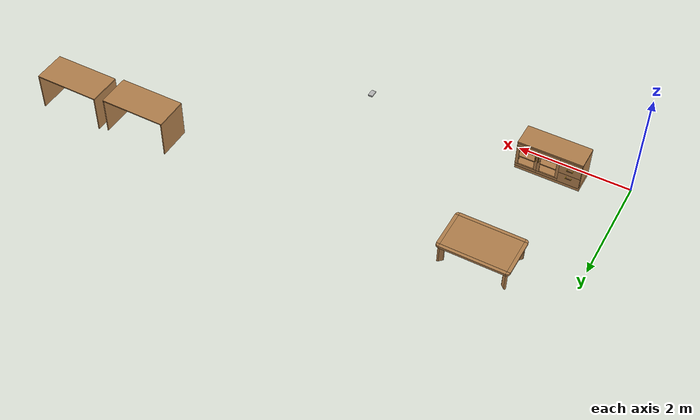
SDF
<sdf version="1.6">
 <world name="default">
  <model name="nasal_cupsul">
   <link name="link">
    <inertial>
     <mass>0.1</mass>
     <inertia><ixx>0.0001</ixx><ixy>0</ixy><ixz>0</ixz><iyy>0.0001</iyy><iyz>0</iyz><izz>0.0001</izz></inertia>
    </inertial>
    <visual name="capsul">
     <geometry><box><size>0.083 0.135 0.026</size></box></geometry>
     <material>
      <script>
       <uri>model://nasal_inflammation_capsul/scripts</uri>
       <uri>model://nasal_inflammation_capsul/textures</uri>
       <name>oral_medicine/nasal_inflammation_capsule</name>
      </script>
     </material>
    </visual>
    <collision name="collision_capsul">
     <geometry><box><size>0.083 0.135 0.026</size></box></geometry>
     <surface>
      <bounce><restitution_coefficient>0.2</restitution_coefficient><threshold>0</threshold></bounce>
      <contact><ode><max_vel>10</max_vel></ode></contact>
     </surface>
    </collision>
    <velocity_decay><linear>0</linear><angular>0</angular></velocity_decay>
   </link>
   <static>0</static>
   <pose>4.51059 0.687683 0.683 0 0 -0.00012</pose>
  </model>
  <model name="kitchen_lowtable">
   <link name="link">
    <inertial>
     <mass>10</mass>
     <inertia><ixx>1</ixx><ixy>0</ixy><ixz>0</ixz><iyy>1</iyy><iyz>0</iyz><izz>1</izz></inertia>
    </inertial>
    <visual name="center_board">
     <pose>0 0 0.38 0 -0 0</pose>
     <geometry><box><size>0.68 1.13 0.04</size></box></geometry>
     <material>
      <script><uri>model://base_materials/wood/scripts/wood.material</uri><name>base_materials/wood</name></script>
     </material>
    </visual>
    <collision name="collision_center_board">
     <pose>0 0 0.38 0 -0 0</pose>
     <geometry><box><size>0.68 1.13 0.04</size></box></geometry>
    </collision>
    <visual name="front_board">
     <pose>0.37 0 0.38 0 -0 0</pose>
     <geometry><box><size>0.06 1.13 0.04</size></box></geometry>
     <material>
      <script><uri>model://base_materials/wood/scripts/wood.material</uri><name>base_materials/wood</name></script>
     </material>
    </visual>
    <collision name="collision_front_board">
     <pose>0.37 0 0.38 0 -0 0</pose>
     <geometry><box><size>0.06 1.13 0.04</size></box></geometry>
    </collision>
    <visual name="back_board">
     <pose>-0.37 0 0.38 0 -0 0</pose>
     <geometry><box><size>0.06 1.13 0.04</size></box></geometry>
     <material>
      <script><uri>model://base_materials/wood/scripts/wood.material</uri><name>base_materials/wood</name></script>
     </material>
    </visual>
    <collision name="collision_back_board">
     <pose>-0.37 0 0.38 0 -0 0</pose>
     <geometry><box><size>0.06 1.13 0.04</size></box></geometry>
    </collision>
    <visual name="right_board">
     <pose>0 0.595 0.38 0 -0 0</pose>
     <geometry><box><size>0.68 0.06 0.04</size></box></geometry>
     <material>
      <script><uri>model://base_materials/wood/scripts/wood.material</uri><name>base_materials/wood</name></script>
     </material>
    </visual>
    <collision name="collision_right_board">
     <pose>0 0.595 0.38 0 -0 0</pose>
     <geometry><box><size>0.68 0.06 0.04</size></box></geometry>
    </collision>
    <visual name="left_board">
     <pose>0 -0.595 0.38 0 -0 0</pose>
     <geometry><box><size>0.68 0.06 0.04</size></box></geometry>
     <material>
      <script><uri>model://base_materials/wood/scripts/wood.material</uri><name>base_materials/wood</name></script>
     </material>
    </visual>
    <collision name="collision_left_board">
     <pose>0 -0.595 0.38 0 -0 0</pose>
     <geometry><box><size>0.68 0.06 0.04</size></box></geometry>
    </collision>
    <visual name="front_right_corner_board">
     <pose>0.34 0.565 0.38 0 -0 0</pose>
     <geometry><cylinder><radius>0.06</radius><length>0.039</length></cylinder></geometry>
     <material>
      <script><uri>model://base_materials/wood/scripts/wood.material</uri><name>base_materials/wood</name></script>
     </material>
    </visual>
    <collision name="collision_front_right_corner_board">
     <pose>0.34 0.565 0.38 0 -0 0</pose>
     <geometry><cylinder><radius>0.06</radius><length>0.039</length></cylinder></geometry>
    </collision>
    <visual name="front_left_corner_board">
     <pose>0.34 -0.565 0.38 0 -0 0</pose>
     <geometry><cylinder><radius>0.06</radius><length>0.039</length></cylinder></geometry>
     <material>
      <script><uri>model://base_materials/wood/scripts/wood.material</uri><name>base_materials/wood</name></script>
     </material>
    </visual>
    <collision name="collision_front_left_corner_board">
     <pose>0.34 -0.565 0.38 0 -0 0</pose>
     <geometry><cylinder><radius>0.06</radius><length>0.039</length></cylinder></geometry>
    </collision>
    <visual name="front_back_right_corner_board">
     <pose>-0.34 0.565 0.38 0 -0 0</pose>
     <geometry><cylinder><radius>0.06</radius><length>0.039</length></cylinder></geometry>
     <material>
      <script><uri>model://base_materials/wood/scripts/wood.material</uri><name>base_materials/wood</name></script>
     </material>
    </visual>
    <collision name="collision_back_right_corner_board">
     <pose>-0.34 0.565 0.38 0 -0 0</pose>
     <geometry><cylinder><radius>0.06</radius><length>0.039</length></cylinder></geometry>
    </collision>
    <visual name="front_back_left_corner_board">
     <pose>-0.34 -0.565 0.38 0 -0 0</pose>
     <geometry><cylinder><radius>0.06</radius><length>0.039</length></cylinder></geometry>
     <material>
      <script><uri>model://base_materials/wood/scripts/wood.material</uri><name>base_materials/wood</name></script>
     </material>
    </visual>
    <collision name="collision_back_left_corner_board">
     <pose>-0.34 -0.565 0.38 0 -0 0</pose>
     <geometry><cylinder><radius>0.06</radius><length>0.039</length></cylinder></geometry>
    </collision>
    <visual name="front_left_corner_frame1">
     <pose>0.345858 -0.57086 0.18 0 -0 0</pose>
     <geometry><cylinder><radius>0.02</radius><length>0.36</length></cylinder></geometry>
     <material>
      <script><uri>model://base_materials/wood/scripts/wood.material</uri><name>base_materials/wood</name></script>
     </material>
    </visual>
    <collision name="collision_front_left_corner_frame1">
     <pose>0.345858 -0.57086 0.18 0 -0 0</pose>
     <geometry><cylinder><radius>0.02</radius><length>0.36</length></cylinder></geometry>
    </collision>
    <visual name="front_left_corner_frame2">
     <pose>0.317574 -0.54257 0.18 0 -0 0.7854</pose>
     <geometry><box><size>0.04 0.08 0.36</size></box></geometry>
     <material>
      <script><uri>model://base_materials/wood/scripts/wood.material</uri><name>base_materials/wood</name></script>
     </material>
    </visual>
    <collision name="collision_front_left_corner_frame2">
     <pose>0.317574 -0.54257 0.18 0 -0 0.7854</pose>
     <geometry><box><size>0.04 0.08 0.36</size></box></geometry>
    </collision>
    <visual name="front_left_corner_frame3">
     <pose>0.289289 -0.51429 0.18 0 -0 0</pose>
     <geometry><cylinder><radius>0.02</radius><length>0.36</length></cylinder></geometry>
     <material>
      <script><uri>model://base_materials/wood/scripts/wood.material</uri><name>base_materials/wood</name></script>
     </material>
    </visual>
    <collision name="collision_front_left_corner_frame3">
     <pose>0.289289 -0.51429 0.18 0 -0 0</pose>
     <geometry><cylinder><radius>0.02</radius><length>0.36</length></cylinder></geometry>
    </collision>
    <visual name="front_right_corner_frame1">
     <pose>0.345858 0.57086 0.18 0 -0 0</pose>
     <geometry><cylinder><radius>0.02</radius><length>0.36</length></cylinder></geometry>
     <material>
      <script><uri>model://base_materials/wood/scripts/wood.material</uri><name>base_materials/wood</name></script>
     </material>
    </visual>
    <collision name="collision_front_right_corner_frame1">
     <pose>0.345858 0.57086 0.18 0 -0 0</pose>
     <geometry><cylinder><radius>0.02</radius><length>0.36</length></cylinder></geometry>
    </collision>
    <visual name="front_right_corner_frame2">
     <pose>0.317574 0.54257 0.18 0 0 -0.7854</pose>
     <geometry><box><size>0.04 0.08 0.36</size></box></geometry>
     <material>
      <script><uri>model://base_materials/wood/scripts/wood.material</uri><name>base_materials/wood</name></script>
     </material>
    </visual>
    <collision name="collision_front_right_corner_frame2">
     <pose>0.317574 0.54257 0.18 0 0 -0.7854</pose>
     <geometry><box><size>0.04 0.08 0.36</size></box></geometry>
    </collision>
    <visual name="front_right_corner_frame3">
     <pose>0.289289 0.51429 0.18 0 -0 0</pose>
     <geometry><cylinder><radius>0.02</radius><length>0.36</length></cylinder></geometry>
     <material>
      <script><uri>model://base_materials/wood/scripts/wood.material</uri><name>base_materials/wood</name></script>
     </material>
    </visual>
    <collision name="collision_front_right_corner_frame3">
     <pose>0.289289 0.51429 0.18 0 -0 0</pose>
     <geometry><cylinder><radius>0.02</radius><length>0.36</length></cylinder></geometry>
    </collision>
    <visual name="back_left_corner_frame1">
     <pose>-0.345858 -0.57086 0.18 0 -0 0</pose>
     <geometry><cylinder><radius>0.02</radius><length>0.36</length></cylinder></geometry>
     <material>
      <script><uri>model://base_materials/wood/scripts/wood.material</uri><name>base_materials/wood</name></script>
     </material>
    </visual>
    <collision name="collision_back_left_corner_frame1">
     <pose>-0.345858 -0.57086 0.18 0 -0 0</pose>
     <geometry><cylinder><radius>0.02</radius><length>0.36</length></cylinder></geometry>
    </collision>
    <visual name="back_left_corner_frame2">
     <pose>-0.317574 -0.54257 0.18 0 0 -0.7854</pose>
     <geometry><box><size>0.04 0.08 0.36</size></box></geometry>
     <material>
      <script><uri>model://base_materials/wood/scripts/wood.material</uri><name>base_materials/wood</name></script>
     </material>
    </visual>
    <collision name="collision_back_left_corner_frame2">
     <pose>-0.317574 -0.54257 0.18 0 0 -0.7854</pose>
     <geometry><box><size>0.04 0.08 0.36</size></box></geometry>
    </collision>
    <visual name="back_left_corner_frame3">
     <pose>-0.289289 -0.51429 0.18 0 -0 0</pose>
     <geometry><cylinder><radius>0.02</radius><length>0.36</length></cylinder></geometry>
     <material>
      <script><uri>model://base_materials/wood/scripts/wood.material</uri><name>base_materials/wood</name></script>
     </material>
    </visual>
    <collision name="collision_back_left_corner_frame3">
     <pose>-0.289289 -0.51429 0.18 0 -0 0</pose>
     <geometry><cylinder><radius>0.02</radius><length>0.36</length></cylinder></geometry>
    </collision>
    <visual name="back_right_corner_frame1">
     <pose>-0.345858 0.57086 0.18 0 -0 0</pose>
     <geometry><cylinder><radius>0.02</radius><length>0.36</length></cylinder></geometry>
     <material>
      <script><uri>model://base_materials/wood/scripts/wood.material</uri><name>base_materials/wood</name></script>
     </material>
    </visual>
    <collision name="collision_back_right_corner_frame1">
     <pose>-0.345858 0.57086 0.18 0 -0 0</pose>
     <geometry><cylinder><radius>0.02</radius><length>0.36</length></cylinder></geometry>
    </collision>
    <visual name="back_right_corner_frame2">
     <pose>-0.317574 0.54257 0.18 0 -0 0.7854</pose>
     <geometry><box><size>0.04 0.08 0.36</size></box></geometry>
     <material>
      <script><uri>model://base_materials/wood/scripts/wood.material</uri><name>base_materials/wood</name></script>
     </material>
    </visual>
    <collision name="collision_back_right_corner_frame2">
     <pose>-0.317574 0.54257 0.18 0 -0 0.7854</pose>
     <geometry><box><size>0.04 0.08 0.36</size></box></geometry>
    </collision>
    <visual name="back_right_corner_frame3">
     <pose>-0.289289 0.51429 0.18 0 -0 0</pose>
     <geometry><cylinder><radius>0.02</radius><length>0.36</length></cylinder></geometry>
     <material>
      <script><uri>model://base_materials/wood/scripts/wood.material</uri><name>base_materials/wood</name></script>
     </material>
    </visual>
    <collision name="collision_back_right_corner_frame3">
     <pose>-0.289289 0.51429 0.18 0 -0 0</pose>
     <geometry><cylinder><radius>0.02</radius><length>0.36</length></cylinder></geometry>
    </collision>
    <velocity_decay><linear>0</linear><angular>0</angular></velocity_decay>
   </link>
   <static>1</static>
   <pose>1.56 2.58 0 0 -0 1.5708</pose>
  </model>
  <model name="office_desk01">
   <link name="link">
    <inertial>
     <mass>10</mass>
     <inertia><ixx>1</ixx><ixy>0</ixy><ixz>0</ixz><iyy>1</iyy><iyz>0</iyz><izz>1</izz></inertia>
    </inertial>
    <visual name="top_board">
     <pose>-0.3 0.6 0.69 0 -0 0</pose>
     <geometry><box><size>0.6 1.2 0.02</size></box></geometry>
     <material>
      <script>
       <uri>model://base_materials/wood/scripts/wood.material</uri>
       <name>base_materials/dark_wood</name>
      </script>
     </material>
    </visual>
    <collision name="collision_top_board">
     <pose>-0.3 0.6 0.69 0 -0 0</pose>
     <geometry><box><size>0.6 1.2 0.02</size></box></geometry>
    </collision>
    <visual name="left_board">
     <pose>-0.3 0.01 0.34 0 -0 0</pose>
     <geometry><box><size>0.6 0.02 0.68</size></box></geometry>
     <material>
      <script>
       <uri>model://base_materials/wood/scripts/wood.material</uri>
       <name>base_materials/dark_wood</name>
      </script>
     </material>
    </visual>
    <collision name="collision_left_board">
     <pose>-0.3 0.01 0.34 0 -0 0</pose>
     <geometry><box><size>0.6 0.02 0.68</size></box></geometry>
    </collision>
    <visual name="right_board">
     <pose>-0.3 1.19 0.34 0 -0 0</pose>
     <geometry><box><size>0.6 0.02 0.68</size></box></geometry>
     <material>
      <script>
       <uri>model://base_materials/wood/scripts/wood.material</uri>
       <name>base_materials/dark_wood</name>
      </script>
     </material>
    </visual>
    <collision name="collision_right_board">
     <pose>-0.3 1.19 0.34 0 -0 0</pose>
     <geometry><box><size>0.6 0.02 0.68</size></box></geometry>
    </collision>
    <visual name="center_board">
     <pose>-0.14 0.6 0.49 0 -0 0</pose>
     <geometry><box><size>0.02 1.16 0.4</size></box></geometry>
     <material>
      <script>
       <uri>model://base_materials/wood/scripts/wood.material</uri>
       <name>base_materials/dark_wood</name>
      </script>
     </material>
    </visual>
    <collision name="ollision_center_board">
     <pose>-0.14 0.6 0.49 0 -0 0</pose>
     <geometry><box><size>0.02 1.16 0.4</size></box></geometry>
    </collision>
    <velocity_decay><linear>0</linear><angular>0</angular></velocity_decay>
   </link>
   <static>1</static>
   <pose>8.54029 2.5499 0 0 0 -1.5708</pose>
  </model>
  <model name="office_desk02">
   <link name="link">
    <inertial>
     <mass>10</mass>
     <inertia><ixx>1</ixx><ixy>0</ixy><ixz>0</ixz><iyy>1</iyy><iyz>0</iyz><izz>1</izz></inertia>
    </inertial>
    <visual name="top_board">
     <pose>-0.3 0.6 0.69 0 -0 0</pose>
     <geometry><box><size>0.6 1.2 0.02</size></box></geometry>
     <material>
      <script>
       <uri>model://base_materials/wood/scripts/wood.material</uri>
       <name>base_materials/dark_wood</name>
      </script>
     </material>
    </visual>
    <collision name="collision_top_board">
     <pose>-0.3 0.6 0.69 0 -0 0</pose>
     <geometry><box><size>0.6 1.2 0.02</size></box></geometry>
    </collision>
    <visual name="left_board">
     <pose>-0.3 0.01 0.34 0 -0 0</pose>
     <geometry><box><size>0.6 0.02 0.68</size></box></geometry>
     <material>
      <script>
       <uri>model://base_materials/wood/scripts/wood.material</uri>
       <name>base_materials/dark_wood</name>
      </script>
     </material>
    </visual>
    <collision name="collision_left_board">
     <pose>-0.3 0.01 0.34 0 -0 0</pose>
     <geometry><box><size>0.6 0.02 0.68</size></box></geometry>
    </collision>
    <visual name="right_board">
     <pose>-0.3 1.19 0.34 0 -0 0</pose>
     <geometry><box><size>0.6 0.02 0.68</size></box></geometry>
     <material>
      <script>
       <uri>model://base_materials/wood/scripts/wood.material</uri>
       <name>base_materials/dark_wood</name>
      </script>
     </material>
    </visual>
    <collision name="collision_right_board">
     <pose>-0.3 1.19 0.34 0 -0 0</pose>
     <geometry><box><size>0.6 0.02 0.68</size></box></geometry>
    </collision>
    <visual name="center_board">
     <pose>-0.14 0.6 0.49 0 -0 0</pose>
     <geometry><box><size>0.02 1.16 0.4</size></box></geometry>
     <material>
      <script>
       <uri>model://base_materials/wood/scripts/wood.material</uri>
       <name>base_materials/dark_wood</name>
      </script>
     </material>
    </visual>
    <collision name="ollision_center_board">
     <pose>-0.14 0.6 0.49 0 -0 0</pose>
     <geometry><box><size>0.02 1.16 0.4</size></box></geometry>
    </collision>
    <velocity_decay><linear>0</linear><angular>0</angular></velocity_decay>
   </link>
   <static>1</static>
   <pose>7.2 2.5 0 0 0 -1.5708</pose>
  </model>
  <model name="living_sideboard">
   <link name="body">
    <inertial>
     <mass>10</mass>
     <inertia><ixx>1</ixx><ixy>0</ixy><ixz>0</ixz><iyy>1</iyy><iyz>0</iyz><izz>1</izz></inertia>
    </inertial>
    <visual name="left_board">
     <pose>-0.23 0.01 0.3375 0 -0 0</pose>
     <geometry><box><size>0.42 0.02 0.495</size></box></geometry>
     <material>
      <script><uri>model://base_materials/wood/scripts/wood.material</uri><name>base_materials/wood</name></script>
     </material>
    </visual>
    <collision name="collision_left_board">
     <pose>-0.23 0.01 0.3375 0 -0 0</pose>
     <geometry><box><size>0.42 0.02 0.495</size></box></geometry>
    </collision>
    <visual name="back_board">
     <pose>-0.42 0.575 0.2925 0 -0 0</pose>
     <geometry><box><size>0.02 1.11 0.585</size></box></geometry>
     <material>
      <script><uri>model://base_materials/wood/scripts/wood.material</uri><name>base_materials/wood</name></script>
     </material>
    </visual>
    <collision name="collision_back_board">
     <pose>-0.42 0.575 0.2925 0 -0 0</pose>
     <geometry><box><size>0.02 1.11 0.585</size></box></geometry>
    </collision>
    <visual name="right_board">
     <pose>-0.23 1.14 0.3375 0 -0 0</pose>
     <geometry><box><size>0.42 0.02 0.495</size></box></geometry>
     <material>
      <script><uri>model://base_materials/wood/scripts/wood.material</uri><name>base_materials/wood</name></script>
     </material>
    </visual>
    <collision name="collision_right_board">
     <pose>-0.23 1.14 0.3375 0 -0 0</pose>
     <geometry><box><size>0.42 0.02 0.495</size></box></geometry>
    </collision>
    <visual name="center_vertical_board1">
     <pose>-0.23 0.74 0.3375 0 -0 0</pose>
     <geometry><box><size>0.42 0.02 0.495</size></box></geometry>
     <material>
      <script><uri>model://base_materials/wood/scripts/wood.material</uri><name>base_materials/wood</name></script>
     </material>
    </visual>
    <collision name="collision_center_vertical_board1">
     <pose>-0.23 0.74 0.3375 0 -0 0</pose>
     <geometry><box><size>0.42 0.02 0.495</size></box></geometry>
    </collision>
    <visual name="top_board">
     <pose>-0.22 0.575 0.6 0 -0 0</pose>
     <geometry><box><size>0.44 1.15 0.03</size></box></geometry>
     <material>
      <script><uri>model://base_materials/wood/scripts/wood.material</uri><name>base_materials/wood</name></script>
     </material>
    </visual>
    <collision name="collision_top_board">
     <pose>-0.22 0.575 0.6 0 -0 0</pose>
     <geometry><box><size>0.44 1.15 0.03</size></box></geometry>
    </collision>
    <visual name="bottom_board">
     <pose>-0.23 0.575 0.045 0 -0 0</pose>
     <geometry><box><size>0.42 1.15 0.09</size></box></geometry>
     <material>
      <script><uri>model://base_materials/wood/scripts/wood.material</uri><name>base_materials/wood</name></script>
     </material>
    </visual>
    <collision name="collision_bottom_board">
     <pose>-0.23 0.575 0.045 0 -0 0</pose>
     <geometry><box><size>0.42 1.15 0.09</size></box></geometry>
    </collision>
    <visual name="1st_shelf">
     <pose>-0.225 0.37 0.259 0 -0 0</pose>
     <geometry><box><size>0.36 0.72 0.018</size></box></geometry>
     <material>
      <script><uri>model://base_materials/wood/scripts/wood.material</uri><name>base_materials/wood</name></script>
     </material>
    </visual>
    <collision name="collision_1st_shelf">
     <pose>-0.225 0.37 0.259 0 -0 0</pose>
     <geometry><box><size>0.36 0.72 0.018</size></box></geometry>
    </collision>
    <visual name="2nd_shelf">
     <pose>-0.225 0.37 0.407 0 -0 0</pose>
     <geometry><box><size>0.36 0.72 0.018</size></box></geometry>
     <material>
      <script><uri>model://base_materials/wood/scripts/wood.material</uri><name>base_materials/wood</name></script>
     </material>
    </visual>
    <collision name="collision_2nd_shelf">
     <pose>-0.225 0.37 0.407 0 -0 0</pose>
     <geometry><box><size>0.36 0.72 0.018</size></box></geometry>
    </collision>
    <visual name="2nd_drawer">
     <pose>-0.2025 0.95 0.37 0 -0 0</pose>
     <geometry><box><size>0.405 0.38 0.17</size></box></geometry>
     <material>
      <script><uri>model://base_materials/wood/scripts/wood.material</uri><name>base_materials/wood</name></script>
     </material>
    </visual>
    <collision name="collision_2nd_drawer">
     <pose>-0.2025 0.95 0.37 0 -0 0</pose>
     <geometry><box><size>0.405 0.38 0.17</size></box></geometry>
    </collision>
    <visual name="2nd_drawer_handle_l1">
     <pose>0.015 0.9015 0.405 3.14159 1.57079 3.14159</pose>
     <geometry><cylinder><radius>0.006</radius><length>0.03</length></cylinder></geometry>
     <material>
      <ambient>1 0.84314 0 1</ambient>
      <diffuse>1 0.84314 0 1</diffuse>
      <specular>0.1 0.1 0.1 1</specular>
     </material>
    </visual>
    <collision name="collision_2nd_drawer_handle_l1">
     <pose>0.015 0.9015 0.405 3.14159 1.57079 3.14159</pose>
     <geometry><cylinder><radius>0.006</radius><length>0.03</length></cylinder></geometry>
    </collision>
    <visual name="2nd_drawer_handle_l2">
     <pose>0.03 0.9015 0.405 0 -0 0</pose>
     <geometry><sphere><radius>0.006</radius></sphere></geometry>
     <material>
      <ambient>1 0.84314 0 1</ambient>
      <diffuse>1 0.84314 0 1</diffuse>
      <specular>0.1 0.1 0.1 1</specular>
     </material>
    </visual>
    <collision name="collision_2nd_drawer_handle_l2">
     <pose>0.03 0.9015 0.405 0 -0 0</pose>
     <geometry><sphere><radius>0.006</radius></sphere></geometry>
    </collision>
    <visual name="2nd_drawer_handle_r1">
     <pose>0.015 0.9985 0.405 3.14159 1.57079 3.14159</pose>
     <geometry><cylinder><radius>0.006</radius><length>0.03</length></cylinder></geometry>
     <material>
      <ambient>1 0.84314 0 1</ambient>
      <diffuse>1 0.84314 0 1</diffuse>
      <specular>0.1 0.1 0.1 1</specular>
     </material>
    </visual>
    <collision name="collision_2nd_drawer_handle_r1">
     <pose>0.015 0.9985 0.405 3.14159 1.57079 3.14159</pose>
     <geometry><cylinder><radius>0.006</radius><length>0.03</length></cylinder></geometry>
    </collision>
    <visual name="2nd_drawer_handle_r2">
     <pose>0.03 0.9985 0.405 0 -0 0</pose>
     <geometry><sphere><radius>0.006</radius></sphere></geometry>
     <material>
      <ambient>1 0.84314 0 1</ambient>
      <diffuse>1 0.84314 0 1</diffuse>
      <specular>0.1 0.1 0.1 1</specular>
     </material>
    </visual>
    <collision name="collision_2nd_drawer_handle_r2">
     <pose>0.03 0.9985 0.405 0 -0 0</pose>
     <geometry><sphere><radius>0.006</radius></sphere></geometry>
    </collision>
    <visual name="2nd_drawer_handle_center">
     <pose>0.03 0.95 0.405 1.5708 -0 0</pose>
     <geometry><cylinder><radius>0.006</radius><length>0.097</length></cylinder></geometry>
     <material>
      <script><uri>model://base_materials/wood/scripts/wood.material</uri><name>base_materials/wood</name></script>
     </material>
    </visual>
    <collision name="collision_2nd_drawer_handle_center">
     <pose>0.03 0.95 0.405 1.5708 -0 0</pose>
     <geometry><cylinder><radius>0.006</radius><length>0.097</length></cylinder></geometry>
    </collision>
    <visual name="3rd_drawer">
     <pose>-0.2025 0.95 0.18 0 -0 0</pose>
     <geometry><box><size>0.405 0.38 0.21</size></box></geometry>
     <material>
      <script><uri>model://base_materials/wood/scripts/wood.material</uri><name>base_materials/wood</name></script>
     </material>
    </visual>
    <collision name="collision_3rd_drawer">
     <pose>-0.2025 0.95 0.18 0 -0 0</pose>
     <geometry><box><size>0.405 0.38 0.21</size></box></geometry>
    </collision>
    <visual name="3rd_drawer_handle_l1">
     <pose>0.015 0.9015 0.235 3.14159 1.57079 3.14159</pose>
     <geometry><cylinder><radius>0.006</radius><length>0.03</length></cylinder></geometry>
     <material>
      <ambient>1 0.84314 0 1</ambient>
      <diffuse>1 0.84314 0 1</diffuse>
      <specular>0.1 0.1 0.1 1</specular>
     </material>
    </visual>
    <collision name="collision_3rd_drawer_handle_l1">
     <pose>0.015 0.9015 0.235 3.14159 1.57079 3.14159</pose>
     <geometry><cylinder><radius>0.006</radius><length>0.03</length></cylinder></geometry>
    </collision>
    <visual name="3rd_drawer_handle_l2">
     <pose>0.03 0.9015 0.235 0 -0 0</pose>
     <geometry><sphere><radius>0.006</radius></sphere></geometry>
     <material>
      <ambient>1 0.84314 0 1</ambient>
      <diffuse>1 0.84314 0 1</diffuse>
      <specular>0.1 0.1 0.1 1</specular>
     </material>
    </visual>
    <collision name="collision_3rd_drawer_handle_l2">
     <pose>0.03 0.9015 0.235 0 -0 0</pose>
     <geometry><sphere><radius>0.006</radius></sphere></geometry>
    </collision>
    <visual name="3rd_drawer_handle_r1">
     <pose>0.015 0.9985 0.235 3.14159 1.57079 3.14159</pose>
     <geometry><cylinder><radius>0.006</radius><length>0.03</length></cylinder></geometry>
     <material>
      <ambient>1 0.84314 0 1</ambient>
      <diffuse>1 0.84314 0 1</diffuse>
      <specular>0.1 0.1 0.1 1</specular>
     </material>
    </visual>
    <collision name="collision_3rd_drawer_handle_r1">
     <pose>0.015 0.9985 0.235 3.14159 1.57079 3.14159</pose>
     <geometry><cylinder><radius>0.006</radius><length>0.03</length></cylinder></geometry>
    </collision>
    <visual name="3rd_drawer_handle_r2">
     <pose>0.03 0.9985 0.235 0 -0 0</pose>
     <geometry><sphere><radius>0.006</radius></sphere></geometry>
     <material>
      <ambient>1 0.84314 0 1</ambient>
      <diffuse>1 0.84314 0 1</diffuse>
      <specular>0.1 0.1 0.1 1</specular>
     </material>
    </visual>
    <collision name="collision_3rd_drawer_handle_r2">
     <pose>0.03 0.9985 0.235 0 -0 0</pose>
     <geometry><sphere><radius>0.006</radius></sphere></geometry>
    </collision>
    <visual name="3rd_drawer_handle_center">
     <pose>0.03 0.95 0.235 1.5708 -0 0</pose>
     <geometry><cylinder><radius>0.006</radius><length>0.097</length></cylinder></geometry>
     <material>
      <script><uri>model://base_materials/wood/scripts/wood.material</uri><name>base_materials/wood</name></script>
     </material>
    </visual>
    <collision name="collision_3rd_drawer_handle_center">
     <pose>0.03 0.95 0.235 1.5708 -0 0</pose>
     <geometry><cylinder><radius>0.006</radius><length>0.097</length></cylinder></geometry>
    </collision>
   </link>
   <link name="right_door">
    <visual name="right_door_left_frame">
     <pose>-0.01 0.405 0.3275 0 -0 0</pose>
     <geometry><box><size>0.02 0.05 0.405</size></box></geometry>
     <material>
      <script><uri>model://base_materials/wood/scripts/wood.material</uri><name>base_materials/wood</name></script>
     </material>
    </visual>
    <collision name="collision_right_door_left_frame">
     <pose>-0.01 0.405 0.3275 0 -0 0</pose>
     <geometry><box><size>0.02 0.05 0.405</size></box></geometry>
    </collision>
    <visual name="right_door_right_frame">
     <pose>-0.01 0.735 0.3275 0 -0 0</pose>
     <geometry><box><size>0.02 0.05 0.405</size></box></geometry>
     <material>
      <script><uri>model://base_materials/wood/scripts/wood.material</uri><name>base_materials/wood</name></script>
     </material>
    </visual>
    <collision name="collision_right_door_right_frame">
     <pose>-0.01 0.735 0.3275 0 -0 0</pose>
     <geometry><box><size>0.02 0.05 0.405</size></box></geometry>
    </collision>
    <visual name="right_door_top_frame">
     <pose>-0.01 0.57 0.5575 0 -0 0</pose>
     <geometry><box><size>0.02 0.38 0.055</size></box></geometry>
     <material>
      <script><uri>model://base_materials/wood/scripts/wood.material</uri><name>base_materials/wood</name></script>
     </material>
    </visual>
    <collision name="collision_right_door_top_frame">
     <pose>-0.01 0.57 0.5575 0 -0 0</pose>
     <geometry><box><size>0.02 0.38 0.055</size></box></geometry>
    </collision>
    <visual name="right_door_bottom_frame">
     <pose>-0.01 0.57 0.1 0 -0 0</pose>
     <geometry><box><size>0.02 0.38 0.05</size></box></geometry>
     <material>
      <script><uri>model://base_materials/wood/scripts/wood.material</uri><name>base_materials/wood</name></script>
     </material>
    </visual>
    <collision name="collision_right_door_bottom_frame">
     <pose>-0.01 0.57 0.1 0 -0 0</pose>
     <geometry><box><size>0.02 0.38 0.05</size></box></geometry>
    </collision>
    <visual name="right_door_handle_top1">
     <pose>0.015 0.405 0.4475 3.14159 1.57079 3.14159</pose>
     <geometry><cylinder><radius>0.006</radius><length>0.03</length></cylinder></geometry>
     <material>
      <ambient>1 0.84314 0 1</ambient>
      <diffuse>1 0.84314 0 1</diffuse>
      <specular>0.1 0.1 0.1 1</specular>
     </material>
    </visual>
    <collision name="collision_right_door_handle_top1">
     <pose>0.015 0.405 0.4475 3.14159 1.57079 3.14159</pose>
     <geometry><cylinder><radius>0.006</radius><length>0.03</length></cylinder></geometry>
    </collision>
    <visual name="right_door_handle_top2">
     <pose>0.03 0.405 0.4475 0 -0 0</pose>
     <geometry><sphere><radius>0.006</radius></sphere></geometry>
     <material>
      <ambient>1 0.84314 0 1</ambient>
      <diffuse>1 0.84314 0 1</diffuse>
      <specular>0.1 0.1 0.1 1</specular>
     </material>
    </visual>
    <collision name="collision_right_door_handle_top2">
     <pose>0.03 0.405 0.4475 0 -0 0</pose>
     <geometry><sphere><radius>0.006</radius></sphere></geometry>
    </collision>
    <visual name="right_door_handle_bottom1">
     <pose>0.015 0.405 0.3505 3.14159 1.57079 3.14159</pose>
     <geometry><cylinder><radius>0.006</radius><length>0.03</length></cylinder></geometry>
     <material>
      <ambient>1 0.84314 0 1</ambient>
      <diffuse>1 0.84314 0 1</diffuse>
      <specular>0.1 0.1 0.1 1</specular>
     </material>
    </visual>
    <collision name="collision_right_door_handle_bottom1">
     <pose>0.015 0.405 0.3505 3.14159 1.57079 3.14159</pose>
     <geometry><cylinder><radius>0.006</radius><length>0.03</length></cylinder></geometry>
    </collision>
    <visual name="right_door_handle_bottom2">
     <pose>0.03 0.405 0.3505 0 -0 0</pose>
     <geometry><sphere><radius>0.006</radius></sphere></geometry>
     <material>
      <ambient>1 0.84314 0 1</ambient>
      <diffuse>1 0.84314 0 1</diffuse>
      <specular>0.1 0.1 0.1 1</specular>
     </material>
    </visual>
    <collision name="collision_right_door_handle_bottom2">
     <pose>0.03 0.405 0.3505 0 -0 0</pose>
     <geometry><sphere><radius>0.006</radius></sphere></geometry>
    </collision>
    <visual name="right_door_handle_center">
     <pose>0.03 0.405 0.399 0 -0 0</pose>
     <geometry><cylinder><radius>0.006</radius><length>0.097</length></cylinder></geometry>
     <material>
      <script><uri>model://base_materials/wood/scripts/wood.material</uri><name>base_materials/wood</name></script>
     </material>
    </visual>
    <collision name="collision_right_door_handle_center">
     <pose>0.03 0.4 0.399 0 -0 0</pose>
     <geometry><cylinder><radius>0.006</radius><length>0.097</length></cylinder></geometry>
    </collision>
    <velocity_decay><linear>0</linear><angular>0</angular></velocity_decay>
    <inertial>
     <inertia><ixx>1</ixx><ixy>0</ixy><ixz>0</ixz><iyy>1</iyy><iyz>0</iyz><izz>1</izz></inertia>
     <mass>1</mass>
    </inertial>
   </link>
   <link name="left_door">
    <visual name="left_door_left_frame">
     <pose>-0.01 0.025 0.3275 0 -0 0</pose>
     <geometry><box><size>0.02 0.05 0.405</size></box></geometry>
     <material>
      <script><uri>model://base_materials/wood/scripts/wood.material</uri><name>base_materials/wood</name></script>
     </material>
    </visual>
    <collision name="collision_left_door_left_frame">
     <pose>-0.01 0.025 0.3275 0 -0 0</pose>
     <geometry><box><size>0.02 0.05 0.405</size></box></geometry>
    </collision>
    <visual name="left_door_right_frame">
     <pose>-0.01 0.355 0.3275 0 -0 0</pose>
     <geometry><box><size>0.02 0.05 0.405</size></box></geometry>
     <material>
      <script><uri>model://base_materials/wood/scripts/wood.material</uri><name>base_materials/wood</name></script>
     </material>
    </visual>
    <collision name="collision_left_door_right_frame">
     <pose>-0.01 0.355 0.3275 0 -0 0</pose>
     <geometry><box><size>0.02 0.05 0.405</size></box></geometry>
    </collision>
    <visual name="left_door_handle_top1">
     <pose>0.015 0.355 0.4475 3.14159 1.57079 3.14159</pose>
     <geometry><cylinder><radius>0.006</radius><length>0.03</length></cylinder></geometry>
     <material>
      <ambient>1 0.84314 0 1</ambient>
      <diffuse>1 0.84314 0 1</diffuse>
      <specular>0.1 0.1 0.1 1</specular>
     </material>
    </visual>
    <collision name="collision_left_door_handle_top1">
     <pose>0.015 0.355 0.4475 3.14159 1.57079 3.14159</pose>
     <geometry><cylinder><radius>0.006</radius><length>0.03</length></cylinder></geometry>
    </collision>
    <visual name="left_door_handle_top2">
     <pose>0.03 0.355 0.4475 0 -0 0</pose>
     <geometry><sphere><radius>0.006</radius></sphere></geometry>
     <material>
      <ambient>1 0.84314 0 1</ambient>
      <diffuse>1 0.84314 0 1</diffuse>
      <specular>0.1 0.1 0.1 1</specular>
     </material>
    </visual>
    <collision name="collision_left_door_handle_top2">
     <pose>0.03 0.355 0.4475 0 -0 0</pose>
     <geometry><sphere><radius>0.006</radius></sphere></geometry>
    </collision>
    <visual name="left_door_handle_bottom1">
     <pose>0.015 0.355 0.3505 3.14159 1.57079 3.14159</pose>
     <geometry><cylinder><radius>0.006</radius><length>0.03</length></cylinder></geometry>
     <material>
      <ambient>1 0.84314 0 1</ambient>
      <diffuse>1 0.84314 0 1</diffuse>
      <specular>0.1 0.1 0.1 1</specular>
     </material>
    </visual>
    <collision name="collision_left_door_handle_bottom1">
     <pose>0.015 0.355 0.3505 3.14159 1.57079 3.14159</pose>
     <geometry><cylinder><radius>0.006</radius><length>0.03</length></cylinder></geometry>
    </collision>
    <visual name="left_door_handle_bottom2">
     <pose>0.03 0.355 0.3505 0 -0 0</pose>
     <geometry><sphere><radius>0.006</radius></sphere></geometry>
     <material>
      <ambient>1 0.84314 0 1</ambient>
      <diffuse>1 0.84314 0 1</diffuse>
      <specular>0.1 0.1 0.1 1</specular>
     </material>
    </visual>
    <collision name="collision_left_door_handle_bottom2">
     <pose>0.03 0.355 0.3505 0 -0 0</pose>
     <geometry><sphere><radius>0.006</radius></sphere></geometry>
    </collision>
    <visual name="left_door_handle_center">
     <pose>0.03 0.355 0.399 0 -0 0</pose>
     <geometry><cylinder><radius>0.006</radius><length>0.097</length></cylinder></geometry>
     <material>
      <script><uri>model://base_materials/wood/scripts/wood.material</uri><name>base_materials/wood</name></script>
     </material>
    </visual>
    <collision name="collision_left_door_handle_center">
     <pose>0.03 0.355 0.399 0 -0 0</pose>
     <geometry><cylinder><radius>0.006</radius><length>0.097</length></cylinder></geometry>
    </collision>
    <visual name="left_door_top_frame">
     <pose>-0.01 0.19 0.5575 0 -0 0</pose>
     <geometry><box><size>0.02 0.38 0.055</size></box></geometry>
     <material>
      <script><uri>model://base_materials/wood/scripts/wood.material</uri><name>base_materials/wood</name></script>
     </material>
    </visual>
    <collision name="collision_left_door_top_frame">
     <pose>-0.01 0.19 0.5575 0 -0 0</pose>
     <geometry><box><size>0.02 0.38 0.055</size></box></geometry>
    </collision>
    <visual name="left_door_bottom_frame">
     <pose>-0.01 0.19 0.1 0 -0 0</pose>
     <geometry><box><size>0.02 0.38 0.05</size></box></geometry>
     <material>
      <script><uri>model://base_materials/wood/scripts/wood.material</uri><name>base_materials/wood</name></script>
     </material>
    </visual>
    <collision name="collision_left_door_bottom_frame">
     <pose>-0.01 0.19 0.1 0 -0 0</pose>
     <geometry><box><size>0.02 0.38 0.05</size></box></geometry>
    </collision>
    <inertial>
     <inertia><ixx>1</ixx><ixy>0</ixy><ixz>0</ixz><iyy>1</iyy><iyz>0</iyz><izz>1</izz></inertia>
     <mass>1</mass>
    </inertial>
   </link>
   <link name="1st_drawer">
    <visual name="1st_drawer_bottom">
     <pose>-0.2025 0.945 0.48 0 -0 0</pose>
     <geometry><box><size>0.38 0.35 0.02</size></box></geometry>
     <material>
      <script><uri>model://base_materials/wood/scripts/wood.material</uri><name>base_materials/wood</name></script>
     </material>
    </visual>
    <collision name="collision_1st_drawer_bottom">
     <pose>-0.2025 0.945 0.48 0 -0 0</pose>
     <geometry><box><size>0.38 0.35 0.02</size></box></geometry>
    </collision>
    <visual name="1st_drawer_left">
     <pose>-0.2025 0.775 0.51 0 -0 0</pose>
     <geometry><box><size>0.4 0.02 0.1</size></box></geometry>
     <material>
      <script><uri>model://base_materials/wood/scripts/wood.material</uri><name>base_materials/wood</name></script>
     </material>
    </visual>
    <collision name="collision_1st_drawer_left">
     <pose>-0.2025 0.775 0.51 0 -0 0</pose>
     <geometry><box><size>0.4 0.02 0.1</size></box></geometry>
    </collision>
    <visual name="1st_drawer_right">
     <pose>-0.2025 1.12 0.51 0 -0 0</pose>
     <geometry><box><size>0.4 0.02 0.1</size></box></geometry>
     <material>
      <script><uri>model://base_materials/wood/scripts/wood.material</uri><name>base_materials/wood</name></script>
     </material>
    </visual>
    <collision name="collision_1st_drawer_right">
     <pose>-0.2025 1.12 0.51 0 -0 0</pose>
     <geometry><box><size>0.4 0.02 0.1</size></box></geometry>
    </collision>
    <visual name="1st_drawer_front">
     <pose>-0.01 0.95 0.52 0 -0 0</pose>
     <geometry><box><size>0.02 0.38 0.125</size></box></geometry>
     <material>
      <script><uri>model://base_materials/wood/scripts/wood.material</uri><name>base_materials/wood</name></script>
     </material>
    </visual>
    <collision name="collision_1st_drawer_front">
     <pose>-0.01 0.95 0.52 0 -0 0</pose>
     <geometry><box><size>0.02 0.38 0.125</size></box></geometry>
    </collision>
    <visual name="1st_drawer_back">
     <pose>-0.4 0.95 0.51 0 -0 0</pose>
     <geometry><box><size>0.02 0.36 0.095</size></box></geometry>
     <material>
      <script><uri>model://base_materials/wood/scripts/wood.material</uri><name>base_materials/wood</name></script>
     </material>
    </visual>
    <collision name="collision_1st_drawer_back">
     <pose>-0.4 0.95 0.51 0 -0 0</pose>
     <geometry><box><size>0.02 0.36 0.095</size></box></geometry>
    </collision>
    <visual name="1st_drawer_handle_l1">
     <pose>0.015 0.9015 0.535 3.14159 1.57079 3.14159</pose>
     <geometry><cylinder><radius>0.006</radius><length>0.03</length></cylinder></geometry>
     <material>
      <ambient>1 0.84314 0 1</ambient>
      <diffuse>1 0.84314 0 1</diffuse>
      <specular>0.1 0.1 0.1 1</specular>
     </material>
    </visual>
    <collision name="collision_1st_drawer_handle_l1">
     <pose>0.015 0.9015 0.535 3.14159 1.57079 3.14159</pose>
     <geometry><cylinder><radius>0.006</radius><length>0.03</length></cylinder></geometry>
    </collision>
    <visual name="1st_drawer_handle_l2">
     <pose>0.03 0.9015 0.535 0 -0 0</pose>
     <geometry><sphere><radius>0.006</radius></sphere></geometry>
     <material>
      <ambient>1 0.84314 0 1</ambient>
      <diffuse>1 0.84314 0 1</diffuse>
      <specular>0.1 0.1 0.1 1</specular>
     </material>
    </visual>
    <collision name="collision_1st_drawer_handle_l2">
     <pose>0.03 0.9015 0.535 0 -0 0</pose>
     <geometry><sphere><radius>0.006</radius></sphere></geometry>
    </collision>
    <visual name="1st_drawer_handle_r1">
     <pose>0.015 0.9985 0.535 3.14159 1.57079 3.14159</pose>
     <geometry><cylinder><radius>0.006</radius><length>0.03</length></cylinder></geometry>
     <material>
      <ambient>1 0.84314 0 1</ambient>
      <diffuse>1 0.84314 0 1</diffuse>
      <specular>0.1 0.1 0.1 1</specular>
     </material>
    </visual>
    <collision name="collision_1st_drawer_handle_r1">
     <pose>0.015 0.9985 0.535 3.14159 1.57079 3.14159</pose>
     <geometry><cylinder><radius>0.006</radius><length>0.03</length></cylinder></geometry>
    </collision>
    <visual name="1st_drawer_handle_r2">
     <pose>0.03 0.9985 0.535 0 -0 0</pose>
     <geometry><sphere><radius>0.006</radius></sphere></geometry>
     <material>
      <ambient>1 0.84314 0 1</ambient>
      <diffuse>1 0.84314 0 1</diffuse>
      <specular>0.1 0.1 0.1 1</specular>
     </material>
    </visual>
    <collision name="collision_1st_drawer_handle_r2">
     <pose>0.03 0.9985 0.535 0 -0 0</pose>
     <geometry><sphere><radius>0.006</radius></sphere></geometry>
    </collision>
    <visual name="1st_drawer_handle_center">
     <pose>0.03 0.95 0.535 1.5708 -0 0</pose>
     <geometry><cylinder><radius>0.006</radius><length>0.097</length></cylinder></geometry>
     <material>
      <script><uri>model://base_materials/wood/scripts/wood.material</uri><name>base_materials/wood</name></script>
     </material>
    </visual>
    <collision name="collision_1st_drawer_handle_center">
     <pose>0.03 0.95 0.535 1.5708 -0 0</pose>
     <geometry><cylinder><radius>0.006</radius><length>0.097</length></cylinder></geometry>
    </collision>
    <inertial>
     <inertia><ixx>1</ixx><ixy>0</ixy><ixz>0</ixz><iyy>1</iyy><iyz>0</iyz><izz>1</izz></inertia>
     <mass>1</mass>
    </inertial>
   </link>
   <joint name="1st_drawer" type="prismatic">
    <parent>body</parent>
    <child>1st_drawer</child>
    <pose>0 0.9 0.45 0 -0 0</pose>
    <axis>
     <xyz>1 0 0</xyz>
     <limit><lower>0</lower><upper>0.3</upper></limit>
     <dynamics>
      <damping>1</damping>
      <friction>10</friction>
      <spring_reference>0</spring_reference>
      <spring_stiffness>0</spring_stiffness>
     </dynamics>
     <use_parent_model_frame>1</use_parent_model_frame>
    </axis>
    <physics><ode><cfm_damping>1</cfm_damping><limit><cfm>0</cfm><erp>0.2</erp></limit></ode></physics>
   </joint>
   <joint name="right_door" type="revolute">
    <parent>body</parent>
    <child>right_door</child>
    <pose>-0.01 0.74 0.3 0 -0 0</pose>
    <axis>
     <xyz>0 0 1</xyz>
     <limit><lower>0</lower><upper>2.61</upper></limit>
     <dynamics>
      <damping>1</damping>
      <friction>10</friction>
      <spring_reference>0</spring_reference>
      <spring_stiffness>0</spring_stiffness>
     </dynamics>
     <use_parent_model_frame>1</use_parent_model_frame>
    </axis>
    <physics><ode><cfm_damping>1</cfm_damping><limit><cfm>0</cfm><erp>0.2</erp></limit></ode></physics>
   </joint>
   <joint name="left_door" type="revolute">
    <parent>body</parent>
    <child>left_door</child>
    <pose>-0.01 0.01 0.3 0 -0 0</pose>
    <axis>
     <xyz>0 0 1</xyz>
     <limit><lower>-2.61</lower><upper>0</upper></limit>
     <dynamics>
      <damping>1</damping>
      <friction>10</friction>
      <spring_reference>0</spring_reference>
      <spring_stiffness>0</spring_stiffness>
     </dynamics>
     <use_parent_model_frame>1</use_parent_model_frame>
    </axis>
    <physics><ode><cfm_damping>1</cfm_damping><limit><cfm>0</cfm><erp>0.2</erp></limit></ode></physics>
   </joint>
   <joint name="body_to_world_joint" type="revolute">
    <parent>world</parent>
    <child>body</child>
    <axis>
     <xyz>0 0 1</xyz>
     <limit><lower>0</lower><upper>0</upper></limit>
     <use_parent_model_frame>1</use_parent_model_frame>
     <dynamics><spring_reference>0</spring_reference><spring_stiffness>0</spring_stiffness></dynamics>
    </axis>
   </joint>
   <static>0</static>
   <pose>1.9 0.47 0 0 -0 1.5708</pose>
  </model>
 </world>
</sdf>
